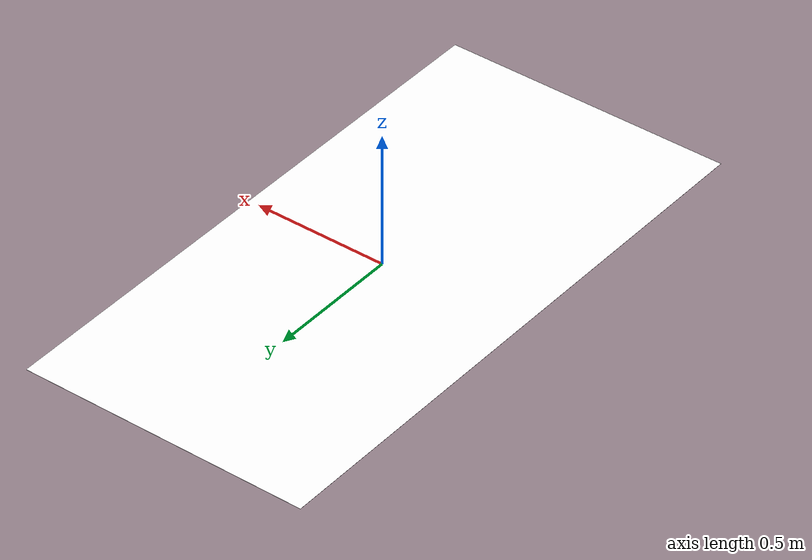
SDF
<?xml version='1.0'?>
<sdf version='1.6'>
  <model name='race_track11'>
    <static>true</static>
    <link name='link'>
      <visual name='visual'>
        <geometry>
          <box>
            <size>1.077 2.176 0.000553</size>
          </box>
        </geometry>
        <material>
          <script>
            <name>RaceTrack11/track11</name>
	    <uri>model://racetrack11/materials/scripts</uri>
            <uri>model://racetrack11/materials/textures</uri>
          </script>
          <ambient>1 1 1 1</ambient>
          <diffuse>1 1 1 1</diffuse>
          <specular>0.01 0.01 0.01 1</specular>
          <emissive>1 1 1 1</emissive>
        </material>
        <transparency>0</transparency>
      </visual>
      <collision name='collision'>
        <geometry>
          <box>
            <size>1.077 2.176 0.000553</size>
          </box>
        </geometry>
	<surface>
          <friction>
            <ode>
              <mu>100</mu>
              <mu2>50</mu2>
            </ode>
          </friction>
        </surface>
      </collision>
    </link>
  </model>
</sdf>
